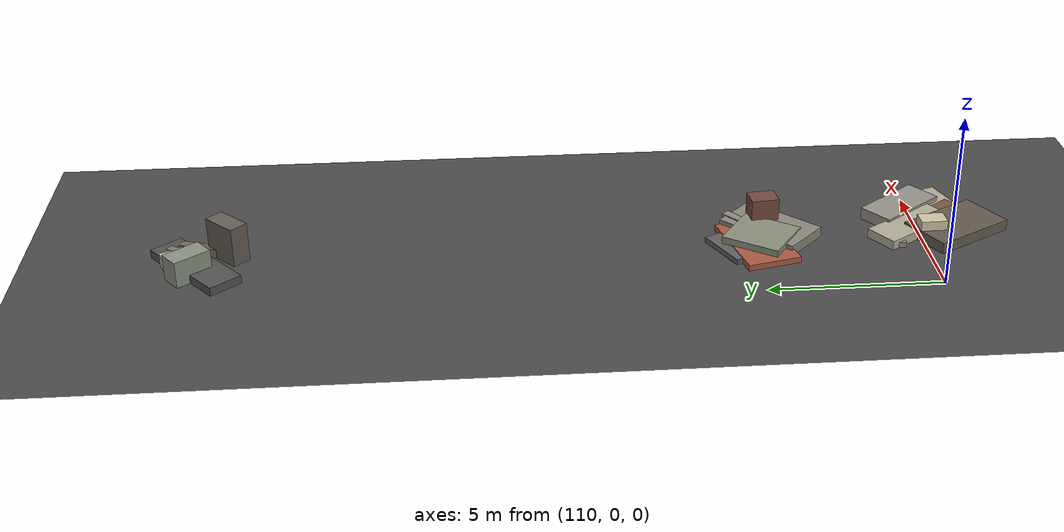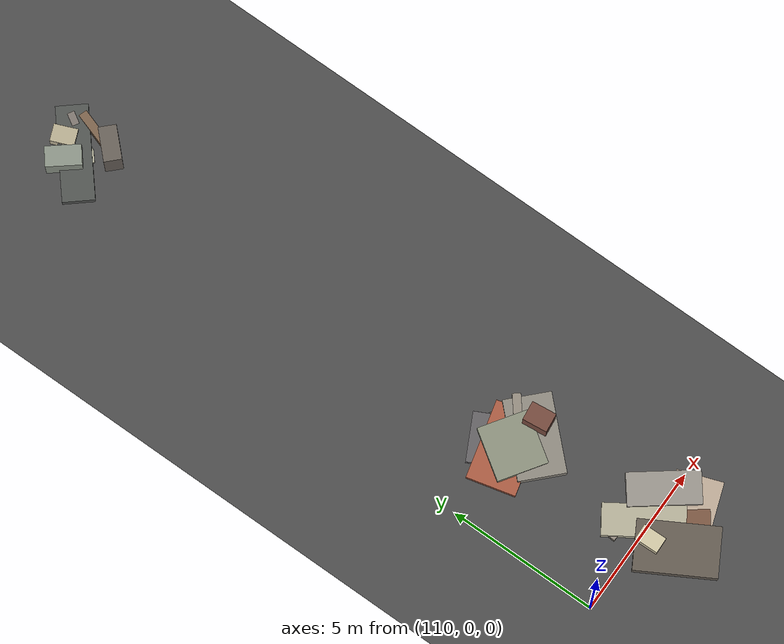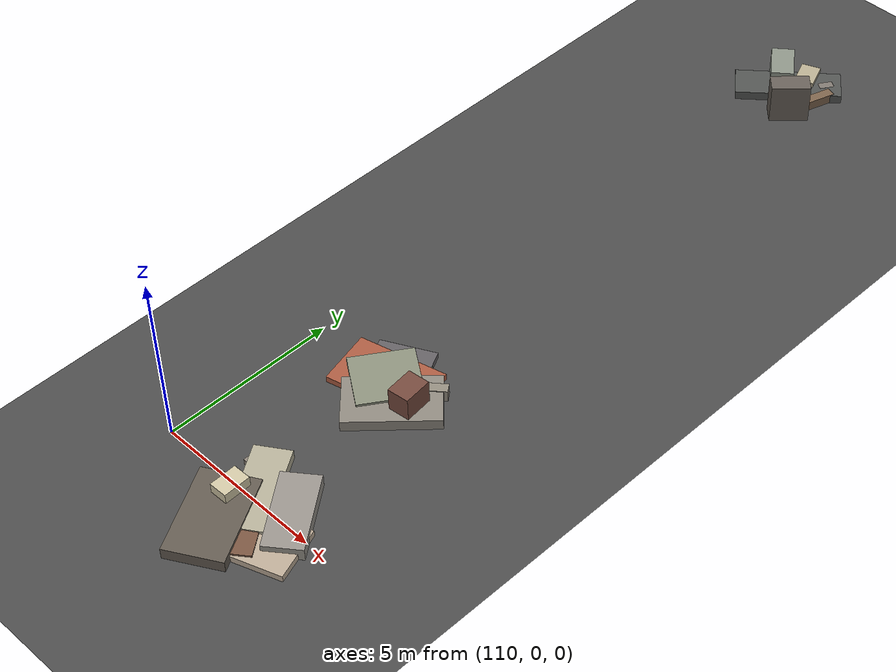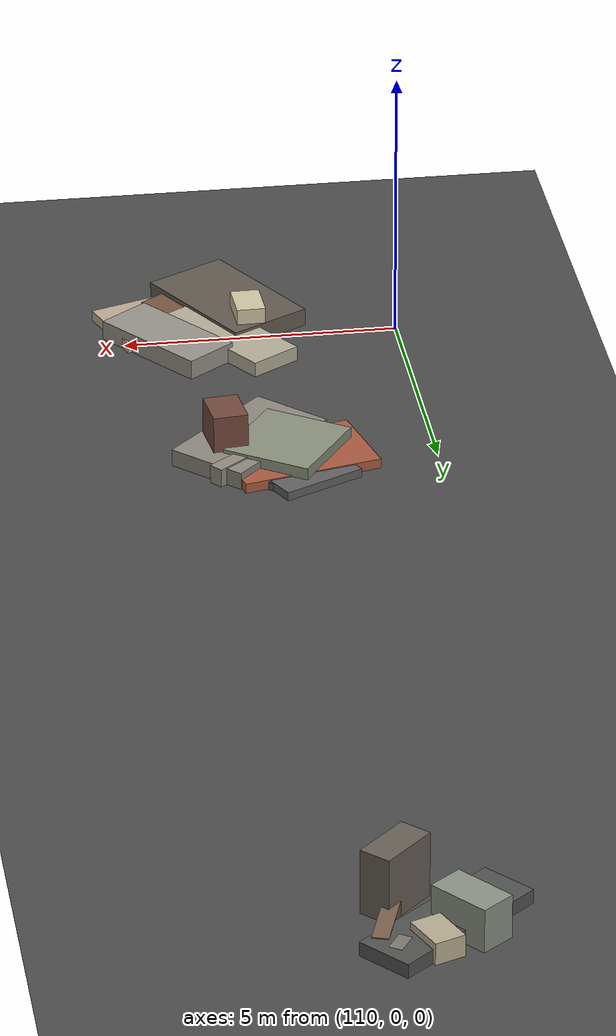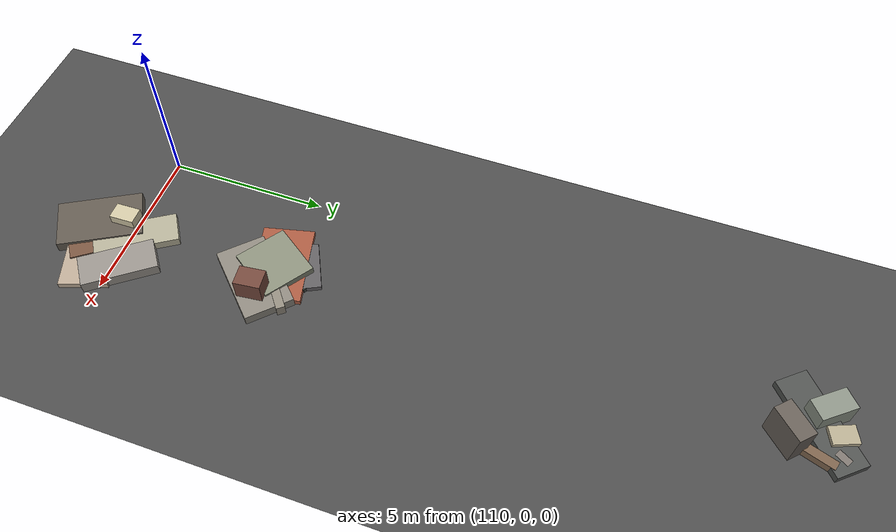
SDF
<sdf version="1.6">
 <world name="navitas_arena">
  <model name="ground_plane">
   <static>true</static>
   <link name="link">
    <collision name="collision">
     <geometry><plane><normal>0 0 1</normal><size>400 400</size></plane></geometry>
     <surface><friction><ode><mu>0.800</mu><mu2>0.800</mu2></ode></friction></surface>
    </collision>
    <visual name="visual">
     <cast_shadows>false</cast_shadows>
     <geometry><plane><normal>0 0 1</normal><size>400 400</size></plane></geometry>
     <material>
      <specular>0.04 0.04 0.04 1</specular>
      <script>
       <uri>file://media/materials/scripts/navitas_asphalt.material</uri>
       <name>Navitas/RealArenaAsphalt</name>
      </script>
     </material>
    </visual>
   </link>
  </model>
  <model name="deb_zor_26">
   <static>true</static>
   <pose>112.870 5.292 0.000 0 0 0</pose>
   <link name="link">
    <collision name="col_0">
     <pose>0.443 -0.312 0.171 0.000 0.000 0.676</pose>
     <geometry><box><size>1.898 0.270 0.342</size></box></geometry>
    </collision>
    <visual name="vis_0">
     <pose>0.443 -0.312 0.171 0.000 0.000 0.676</pose>
     <geometry><box><size>1.898 0.270 0.342</size></box></geometry>
     <material>
      <ambient>0.54 0.51 0.47 1</ambient>
      <diffuse>0.58 0.55 0.50 1</diffuse>
      <specular>0.05 0.05 0.045 1</specular>
     </material>
    </visual>
    <collision name="col_1">
     <pose>-0.318 -0.067 0.081 0.000 0.000 2.037</pose>
     <geometry><box><size>1.715 1.586 0.161</size></box></geometry>
    </collision>
    <visual name="vis_1">
     <pose>-0.318 -0.067 0.081 0.000 0.000 2.037</pose>
     <geometry><box><size>1.715 1.586 0.161</size></box></geometry>
     <material>
      <ambient>0.36 0.35 0.36 1</ambient>
      <diffuse>0.39 0.38 0.39 1</diffuse>
      <specular>0.05 0.05 0.045 1</specular>
     </material>
    </visual>
    <collision name="col_2">
     <pose>0.052 0.510 0.075 0.000 0.000 2.599</pose>
     <geometry><box><size>0.314 0.402 0.151</size></box></geometry>
    </collision>
    <visual name="vis_2">
     <pose>0.052 0.510 0.075 0.000 0.000 2.599</pose>
     <geometry><box><size>0.314 0.402 0.151</size></box></geometry>
     <material>
      <ambient>0.27 0.30 0.27 1</ambient>
      <diffuse>0.30 0.32 0.29 1</diffuse>
      <specular>0.05 0.05 0.045 1</specular>
     </material>
    </visual>
    <collision name="col_3">
     <pose>-0.207 -0.557 0.192 0.000 0.000 0.975</pose>
     <geometry><box><size>1.754 1.656 0.384</size></box></geometry>
    </collision>
    <visual name="vis_3">
     <pose>-0.207 -0.557 0.192 0.000 0.000 0.975</pose>
     <geometry><box><size>1.754 1.656 0.384</size></box></geometry>
     <material>
      <ambient>0.51 0.53 0.46 1</ambient>
      <diffuse>0.55 0.57 0.49 1</diffuse>
      <specular>0.05 0.05 0.045 1</specular>
     </material>
    </visual>
    <collision name="col_4">
     <pose>-0.355 -0.414 0.090 0.000 0.000 3.383</pose>
     <geometry><box><size>2.568 1.605 0.181</size></box></geometry>
    </collision>
    <visual name="vis_4">
     <pose>-0.355 -0.414 0.090 0.000 0.000 3.383</pose>
     <geometry><box><size>2.568 1.605 0.181</size></box></geometry>
     <material>
      <ambient>0.62 0.33 0.24 1</ambient>
      <diffuse>0.67 0.36 0.26 1</diffuse>
      <specular>0.05 0.05 0.045 1</specular>
     </material>
    </visual>
   </link>
  </model>
  <model name="deb_zor_110">
   <static>true</static>
   <pose>113.653 -0.483 0.000 0 0 0</pose>
   <link name="link">
    <collision name="col_0">
     <pose>-0.567 0.681 0.139 0.000 0.000 2.150</pose>
     <geometry><box><size>2.578 1.012 0.278</size></box></geometry>
    </collision>
    <visual name="vis_0">
     <pose>-0.567 0.681 0.139 0.000 0.000 2.150</pose>
     <geometry><box><size>2.578 1.012 0.278</size></box></geometry>
     <material>
      <ambient>0.65 0.64 0.56 1</ambient>
      <diffuse>0.71 0.69 0.60 1</diffuse>
      <specular>0.05 0.05 0.045 1</specular>
     </material>
    </visual>
    <collision name="col_1">
     <pose>-0.446 -0.909 0.122 0.000 0.000 0.542</pose>
     <geometry><box><size>0.307 0.285 0.245</size></box></geometry>
    </collision>
    <visual name="vis_1">
     <pose>-0.446 -0.909 0.122 0.000 0.000 0.542</pose>
     <geometry><box><size>0.307 0.285 0.245</size></box></geometry>
     <material>
      <ambient>0.45 0.33 0.28 1</ambient>
      <diffuse>0.49 0.35 0.31 1</diffuse>
      <specular>0.05 0.05 0.045 1</specular>
     </material>
    </visual>
    <collision name="col_2">
     <pose>-0.698 -0.632 0.167 0.000 0.000 2.087</pose>
     <geometry><box><size>2.603 1.597 0.333</size></box></geometry>
    </collision>
    <visual name="vis_2">
     <pose>-0.698 -0.632 0.167 0.000 0.000 2.087</pose>
     <geometry><box><size>2.603 1.597 0.333</size></box></geometry>
     <material>
      <ambient>0.36 0.33 0.29 1</ambient>
      <diffuse>0.39 0.36 0.32 1</diffuse>
      <specular>0.05 0.05 0.045 1</specular>
     </material>
    </visual>
    <collision name="col_3">
     <pose>0.584 0.738 0.182 0.000 0.000 2.223</pose>
     <geometry><box><size>2.298 1.057 0.365</size></box></geometry>
    </collision>
    <visual name="vis_3">
     <pose>0.584 0.738 0.182 0.000 0.000 2.223</pose>
     <geometry><box><size>2.298 1.057 0.365</size></box></geometry>
     <material>
      <ambient>0.56 0.53 0.51 1</ambient>
      <diffuse>0.60 0.58 0.55 1</diffuse>
      <specular>0.05 0.05 0.045 1</specular>
     </material>
    </visual>
    <collision name="col_4">
     <pose>-0.969 0.177 0.314 0.000 0.000 1.597</pose>
     <geometry><box><size>0.778 0.527 0.628</size></box></geometry>
    </collision>
    <visual name="vis_4">
     <pose>-0.969 0.177 0.314 0.000 0.000 1.597</pose>
     <geometry><box><size>0.778 0.527 0.628</size></box></geometry>
     <material>
      <ambient>0.76 0.72 0.60 1</ambient>
      <diffuse>0.82 0.78 0.65 1</diffuse>
      <specular>0.05 0.05 0.045 1</specular>
     </material>
    </visual>
    <collision name="col_5">
     <pose>0.650 -0.709 0.090 0.000 0.000 0.249</pose>
     <geometry><box><size>0.476 0.467 0.180</size></box></geometry>
    </collision>
    <visual name="vis_5">
     <pose>0.650 -0.709 0.090 0.000 0.000 0.249</pose>
     <geometry><box><size>0.476 0.467 0.180</size></box></geometry>
     <material>
      <ambient>0.69 0.68 0.58 1</ambient>
      <diffuse>0.74 0.74 0.62 1</diffuse>
      <specular>0.05 0.05 0.045 1</specular>
     </material>
    </visual>
    <collision name="col_6">
     <pose>0.424 -0.328 0.096 0.000 0.000 0.337</pose>
     <geometry><box><size>2.413 1.497 0.193</size></box></geometry>
    </collision>
    <visual name="vis_6">
     <pose>0.424 -0.328 0.096 0.000 0.000 0.337</pose>
     <geometry><box><size>2.413 1.497 0.193</size></box></geometry>
     <material>
      <ambient>0.69 0.62 0.54 1</ambient>
      <diffuse>0.74 0.67 0.59 1</diffuse>
      <specular>0.05 0.05 0.045 1</specular>
     </material>
    </visual>
   </link>
  </model>
  <model name="deb_zor_154">
   <static>true</static>
   <pose>113.289 0.091 0.000 0 0 0</pose>
   <link name="link">
    <collision name="col_0">
     <pose>0.181 -0.464 0.122 0.000 0.000 -0.931</pose>
     <geometry><box><size>2.660 0.677 0.243</size></box></geometry>
    </collision>
    <visual name="vis_0">
     <pose>0.181 -0.464 0.122 0.000 0.000 -0.931</pose>
     <geometry><box><size>2.660 0.677 0.243</size></box></geometry>
     <material>
      <ambient>0.44 0.31 0.24 1</ambient>
      <diffuse>0.48 0.34 0.26 1</diffuse>
      <specular>0.05 0.05 0.045 1</specular>
     </material>
    </visual>
    <collision name="col_1">
     <pose>-0.084 0.372 0.112 0.000 0.000 -0.543</pose>
     <geometry><box><size>0.382 0.387 0.223</size></box></geometry>
    </collision>
    <visual name="vis_1">
     <pose>-0.084 0.372 0.112 0.000 0.000 -0.543</pose>
     <geometry><box><size>0.382 0.387 0.223</size></box></geometry>
     <material>
      <ambient>0.52 0.51 0.45 1</ambient>
      <diffuse>0.57 0.55 0.49 1</diffuse>
      <specular>0.05 0.05 0.045 1</specular>
     </material>
    </visual>
    <collision name="col_2">
     <pose>-0.040 0.552 0.087 0.000 0.000 -0.054</pose>
     <geometry><box><size>2.337 0.253 0.175</size></box></geometry>
    </collision>
    <visual name="vis_2">
     <pose>-0.040 0.552 0.087 0.000 0.000 -0.054</pose>
     <geometry><box><size>2.337 0.253 0.175</size></box></geometry>
     <material>
      <ambient>0.53 0.49 0.45 1</ambient>
      <diffuse>0.57 0.53 0.49 1</diffuse>
      <specular>0.05 0.05 0.045 1</specular>
     </material>
    </visual>
    <collision name="col_3">
     <pose>-0.465 0.332 0.111 0.000 0.000 -1.021</pose>
     <geometry><box><size>0.376 0.344 0.222</size></box></geometry>
    </collision>
    <visual name="vis_3">
     <pose>-0.465 0.332 0.111 0.000 0.000 -1.021</pose>
     <geometry><box><size>0.376 0.344 0.222</size></box></geometry>
     <material>
      <ambient>0.34 0.32 0.31 1</ambient>
      <diffuse>0.37 0.35 0.33 1</diffuse>
      <specular>0.05 0.05 0.045 1</specular>
     </material>
    </visual>
    <collision name="col_4">
     <pose>0.257 0.634 0.157 0.000 0.000 0.549</pose>
     <geometry><box><size>0.186 0.361 0.313</size></box></geometry>
    </collision>
    <visual name="vis_4">
     <pose>0.257 0.634 0.157 0.000 0.000 0.549</pose>
     <geometry><box><size>0.186 0.361 0.313</size></box></geometry>
     <material>
      <ambient>0.47 0.45 0.41 1</ambient>
      <diffuse>0.51 0.48 0.45 1</diffuse>
      <specular>0.05 0.05 0.045 1</specular>
     </material>
    </visual>
   </link>
  </model>
  <model name="deb_zor_290">
   <static>true</static>
   <pose>112.863 21.111 0.000 0 0 0</pose>
   <link name="link">
    <collision name="col_0">
     <pose>0.424 -0.423 0.137 0.000 0.000 1.255</pose>
     <geometry><box><size>1.663 0.283 0.275</size></box></geometry>
    </collision>
    <visual name="vis_0">
     <pose>0.424 -0.423 0.137 0.000 0.000 1.255</pose>
     <geometry><box><size>1.663 0.283 0.275</size></box></geometry>
     <material>
      <ambient>0.46 0.37 0.27 1</ambient>
      <diffuse>0.49 0.39 0.30 1</diffuse>
      <specular>0.05 0.05 0.045 1</specular>
     </material>
    </visual>
    <collision name="col_1">
     <pose>-0.294 -0.550 0.066 0.000 0.000 0.727</pose>
     <geometry><box><size>0.436 0.350 0.132</size></box></geometry>
    </collision>
    <visual name="vis_1">
     <pose>-0.294 -0.550 0.066 0.000 0.000 0.727</pose>
     <geometry><box><size>0.436 0.350 0.132</size></box></geometry>
     <material>
      <ambient>0.69 0.69 0.60 1</ambient>
      <diffuse>0.75 0.74 0.65 1</diffuse>
      <specular>0.05 0.05 0.045 1</specular>
     </material>
    </visual>
    <collision name="col_2">
     <pose>0.376 0.501 0.128 0.000 0.000 1.020</pose>
     <geometry><box><size>0.423 0.234 0.256</size></box></geometry>
    </collision>
    <visual name="vis_2">
     <pose>0.376 0.501 0.128 0.000 0.000 1.020</pose>
     <geometry><box><size>0.423 0.234 0.256</size></box></geometry>
     <material>
      <ambient>0.46 0.44 0.41 1</ambient>
      <diffuse>0.50 0.47 0.44 1</diffuse>
      <specular>0.05 0.05 0.045 1</specular>
     </material>
    </visual>
    <collision name="col_3">
     <pose>0.229 -1.054 0.584 0.000 0.000 0.787</pose>
     <geometry><box><size>1.112 0.572 1.168</size></box></geometry>
    </collision>
    <visual name="vis_3">
     <pose>0.229 -1.054 0.584 0.000 0.000 0.787</pose>
     <geometry><box><size>1.112 0.572 1.168</size></box></geometry>
     <material>
      <ambient>0.38 0.36 0.32 1</ambient>
      <diffuse>0.41 0.38 0.35 1</diffuse>
      <specular>0.05 0.05 0.045 1</specular>
     </material>
    </visual>
    <collision name="col_4">
     <pose>-0.472 -0.187 0.128 0.000 0.000 0.702</pose>
     <geometry><box><size>3.051 1.024 0.255</size></box></geometry>
    </collision>
    <visual name="vis_4">
     <pose>-0.472 -0.187 0.128 0.000 0.000 0.702</pose>
     <geometry><box><size>3.051 1.024 0.255</size></box></geometry>
     <material>
      <ambient>0.29 0.31 0.29 1</ambient>
      <diffuse>0.32 0.33 0.32 1</diffuse>
      <specular>0.05 0.05 0.045 1</specular>
     </material>
    </visual>
    <collision name="col_5">
     <pose>-0.841 -0.043 0.392 0.000 0.000 2.245</pose>
     <geometry><box><size>1.143 0.657 0.783</size></box></geometry>
    </collision>
    <visual name="vis_5">
     <pose>-0.841 -0.043 0.392 0.000 0.000 2.245</pose>
     <geometry><box><size>1.143 0.657 0.783</size></box></geometry>
     <material>
      <ambient>0.51 0.54 0.49 1</ambient>
      <diffuse>0.55 0.58 0.53 1</diffuse>
      <specular>0.05 0.05 0.045 1</specular>
     </material>
    </visual>
    <collision name="col_6">
     <pose>-0.232 0.400 0.197 0.000 0.000 1.957</pose>
     <geometry><box><size>0.774 0.556 0.394</size></box></geometry>
    </collision>
    <visual name="vis_6">
     <pose>-0.232 0.400 0.197 0.000 0.000 1.957</pose>
     <geometry><box><size>0.774 0.556 0.394</size></box></geometry>
     <material>
      <ambient>0.67 0.63 0.53 1</ambient>
      <diffuse>0.72 0.68 0.57 1</diffuse>
      <specular>0.05 0.05 0.045 1</specular>
     </material>
    </visual>
   </link>
  </model>
  <model name="deb_zor_350">
   <static>true</static>
   <pose>113.528 4.466 0.000 0 0 0</pose>
   <link name="link">
    <collision name="col_0">
     <pose>-0.011 0.050 0.121 0.000 0.000 1.846</pose>
     <geometry><box><size>0.261 0.311 0.242</size></box></geometry>
    </collision>
    <visual name="vis_0">
     <pose>-0.011 0.050 0.121 0.000 0.000 1.846</pose>
     <geometry><box><size>0.261 0.311 0.242</size></box></geometry>
     <material>
      <ambient>0.36 0.34 0.32 1</ambient>
      <diffuse>0.39 0.37 0.35 1</diffuse>
      <specular>0.05 0.05 0.045 1</specular>
     </material>
    </visual>
    <collision name="col_1">
     <pose>-0.191 -0.322 0.064 0.000 0.000 1.371</pose>
     <geometry><box><size>0.452 0.369 0.127</size></box></geometry>
    </collision>
    <visual name="vis_1">
     <pose>-0.191 -0.322 0.064 0.000 0.000 1.371</pose>
     <geometry><box><size>0.452 0.369 0.127</size></box></geometry>
     <material>
      <ambient>0.73 0.69 0.58 1</ambient>
      <diffuse>0.79 0.74 0.63 1</diffuse>
      <specular>0.05 0.05 0.045 1</specular>
     </material>
    </visual>
    <collision name="col_2">
     <pose>0.213 0.062 0.496 0.000 0.000 3.252</pose>
     <geometry><box><size>0.630 0.816 0.991</size></box></geometry>
    </collision>
    <visual name="vis_2">
     <pose>0.213 0.062 0.496 0.000 0.000 3.252</pose>
     <geometry><box><size>0.630 0.816 0.991</size></box></geometry>
     <material>
      <ambient>0.43 0.27 0.22 1</ambient>
      <diffuse>0.46 0.29 0.24 1</diffuse>
      <specular>0.05 0.05 0.045 1</specular>
     </material>
    </visual>
    <collision name="col_3">
     <pose>-0.241 -0.104 0.158 0.000 0.000 3.938</pose>
     <geometry><box><size>2.562 1.526 0.316</size></box></geometry>
    </collision>
    <visual name="vis_3">
     <pose>-0.241 -0.104 0.158 0.000 0.000 3.938</pose>
     <geometry><box><size>2.562 1.526 0.316</size></box></geometry>
     <material>
      <ambient>0.52 0.50 0.46 1</ambient>
      <diffuse>0.56 0.54 0.50 1</diffuse>
      <specular>0.05 0.05 0.045 1</specular>
     </material>
    </visual>
    <collision name="col_4">
     <pose>-0.313 0.415 0.088 0.000 0.000 1.830</pose>
     <geometry><box><size>0.322 0.364 0.176</size></box></geometry>
    </collision>
    <visual name="vis_4">
     <pose>-0.313 0.415 0.088 0.000 0.000 1.830</pose>
     <geometry><box><size>0.322 0.364 0.176</size></box></geometry>
     <material>
      <ambient>0.62 0.37 0.30 1</ambient>
      <diffuse>0.67 0.40 0.32 1</diffuse>
      <specular>0.05 0.05 0.045 1</specular>
     </material>
    </visual>
   </link>
  </model>
 </world>
</sdf>
